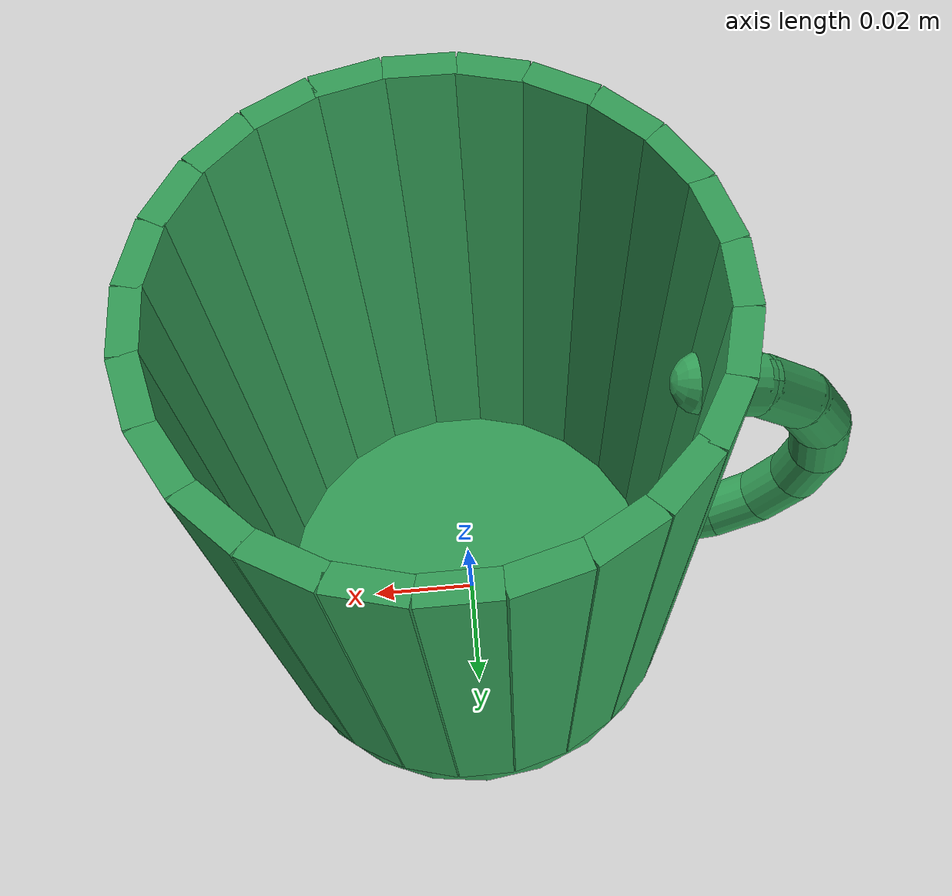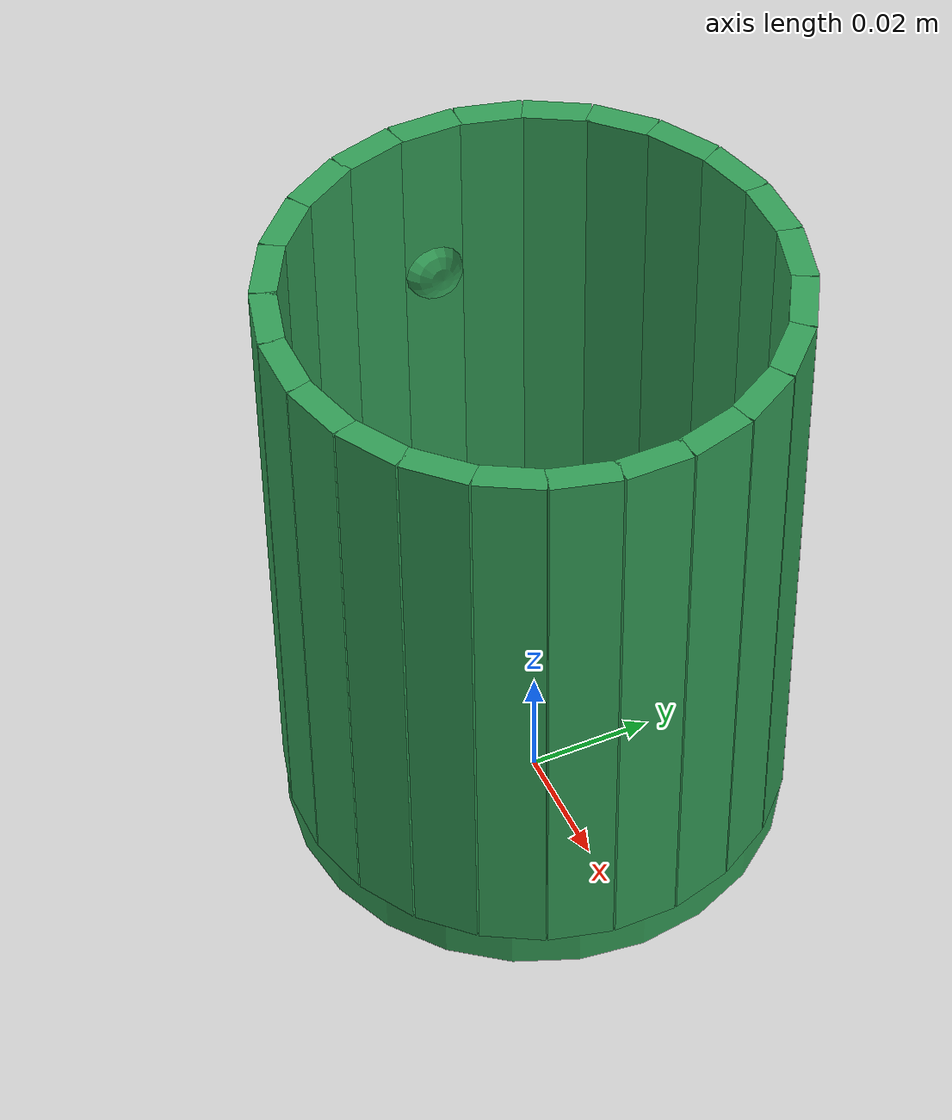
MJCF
<mujoco model="cup_green">

  <default>
    <default class="cup">
      <geom condim="4" friction="1.2 0.05 0.001" solref="0.01 1" density="2400" rgba="0.20 0.62 0.34 1"/>
    </default>
  </default>

  <worldbody>
    <body name="root">
      <freejoint name="free"/>
      <geom name="base" class="cup" type="cylinder"
            pos="+0.00000 +0.00000 +0.00300" size="+0.04000 +0.00300"/>

      <!-- Ring wall. -->
      <geom class="cup" type="box" pos="+0.03800 +0.00000 +0.05550" quat="+1.000000 +0.000000 +0.000000 +0.000000" size="+0.00200 +0.00510 +0.04950"/>
      <geom class="cup" type="box" pos="+0.03671 +0.00984 +0.05550" quat="+0.991445 +0.000000 +0.000000 +0.130526" size="+0.00200 +0.00510 +0.04950"/>
      <geom class="cup" type="box" pos="+0.03291 +0.01900 +0.05550" quat="+0.965926 +0.000000 +0.000000 +0.258819" size="+0.00200 +0.00510 +0.04950"/>
      <geom class="cup" type="box" pos="+0.02687 +0.02687 +0.05550" quat="+0.923880 +0.000000 +0.000000 +0.382683" size="+0.00200 +0.00510 +0.04950"/>
      <geom class="cup" type="box" pos="+0.01900 +0.03291 +0.05550" quat="+0.866025 +0.000000 +0.000000 +0.500000" size="+0.00200 +0.00510 +0.04950"/>
      <geom class="cup" type="box" pos="+0.00984 +0.03671 +0.05550" quat="+0.793353 +0.000000 +0.000000 +0.608761" size="+0.00200 +0.00510 +0.04950"/>
      <geom class="cup" type="box" pos="+0.00000 +0.03800 +0.05550" quat="+0.707107 +0.000000 +0.000000 +0.707107" size="+0.00200 +0.00510 +0.04950"/>
      <geom class="cup" type="box" pos="-0.00984 +0.03671 +0.05550" quat="+0.608761 +0.000000 +0.000000 +0.793353" size="+0.00200 +0.00510 +0.04950"/>
      <geom class="cup" type="box" pos="-0.01900 +0.03291 +0.05550" quat="+0.500000 +0.000000 +0.000000 +0.866025" size="+0.00200 +0.00510 +0.04950"/>
      <geom class="cup" type="box" pos="-0.02687 +0.02687 +0.05550" quat="+0.382683 +0.000000 +0.000000 +0.923880" size="+0.00200 +0.00510 +0.04950"/>
      <geom class="cup" type="box" pos="-0.03291 +0.01900 +0.05550" quat="+0.258819 +0.000000 +0.000000 +0.965926" size="+0.00200 +0.00510 +0.04950"/>
      <geom class="cup" type="box" pos="-0.03671 +0.00984 +0.05550" quat="+0.130526 +0.000000 +0.000000 +0.991445" size="+0.00200 +0.00510 +0.04950"/>
      <geom class="cup" type="box" pos="-0.03800 +0.00000 +0.05550" quat="+0.000000 +0.000000 +0.000000 +1.000000" size="+0.00200 +0.00510 +0.04950"/>
      <geom class="cup" type="box" pos="-0.03671 -0.00984 +0.05550" quat="-0.130526 +0.000000 +0.000000 +0.991445" size="+0.00200 +0.00510 +0.04950"/>
      <geom class="cup" type="box" pos="-0.03291 -0.01900 +0.05550" quat="-0.258819 +0.000000 +0.000000 +0.965926" size="+0.00200 +0.00510 +0.04950"/>
      <geom class="cup" type="box" pos="-0.02687 -0.02687 +0.05550" quat="-0.382683 +0.000000 +0.000000 +0.923880" size="+0.00200 +0.00510 +0.04950"/>
      <geom class="cup" type="box" pos="-0.01900 -0.03291 +0.05550" quat="-0.500000 +0.000000 +0.000000 +0.866025" size="+0.00200 +0.00510 +0.04950"/>
      <geom class="cup" type="box" pos="-0.00984 -0.03671 +0.05550" quat="-0.608761 +0.000000 +0.000000 +0.793353" size="+0.00200 +0.00510 +0.04950"/>
      <geom class="cup" type="box" pos="-0.00000 -0.03800 +0.05550" quat="-0.707107 +0.000000 +0.000000 +0.707107" size="+0.00200 +0.00510 +0.04950"/>
      <geom class="cup" type="box" pos="+0.00984 -0.03671 +0.05550" quat="-0.793353 +0.000000 +0.000000 +0.608761" size="+0.00200 +0.00510 +0.04950"/>
      <geom class="cup" type="box" pos="+0.01900 -0.03291 +0.05550" quat="-0.866025 +0.000000 +0.000000 +0.500000" size="+0.00200 +0.00510 +0.04950"/>
      <geom class="cup" type="box" pos="+0.02687 -0.02687 +0.05550" quat="-0.923880 +0.000000 +0.000000 +0.382683" size="+0.00200 +0.00510 +0.04950"/>
      <geom class="cup" type="box" pos="+0.03291 -0.01900 +0.05550" quat="-0.965926 +0.000000 +0.000000 +0.258819" size="+0.00200 +0.00510 +0.04950"/>
      <geom class="cup" type="box" pos="+0.03671 -0.00984 +0.05550" quat="-0.991445 +0.000000 +0.000000 +0.130526" size="+0.00200 +0.00510 +0.04950"/>

      <!-- Handle. -->
      <geom class="cup" type="capsule" fromto="-0.03700 +0.00000 +0.02730 -0.04588 +0.00000 +0.02922" size="0.00480"/>
      <geom class="cup" type="capsule" fromto="-0.04588 +0.00000 +0.02922 -0.05340 +0.00000 +0.03468" size="0.00480"/>
      <geom class="cup" type="capsule" fromto="-0.05340 +0.00000 +0.03468 -0.05843 +0.00000 +0.04286" size="0.00480"/>
      <geom class="cup" type="capsule" fromto="-0.05843 +0.00000 +0.04286 -0.06020 +0.00000 +0.05250" size="0.00480"/>
      <geom class="cup" type="capsule" fromto="-0.06020 +0.00000 +0.05250 -0.05843 +0.00000 +0.06214" size="0.00480"/>
      <geom class="cup" type="capsule" fromto="-0.05843 +0.00000 +0.06214 -0.05340 +0.00000 +0.07032" size="0.00480"/>
      <geom class="cup" type="capsule" fromto="-0.05340 +0.00000 +0.07032 -0.04588 +0.00000 +0.07578" size="0.00480"/>
      <geom class="cup" type="capsule" fromto="-0.04588 +0.00000 +0.07578 -0.03700 +0.00000 +0.07770" size="0.00480"/>
    </body>
  </worldbody>
</mujoco>
